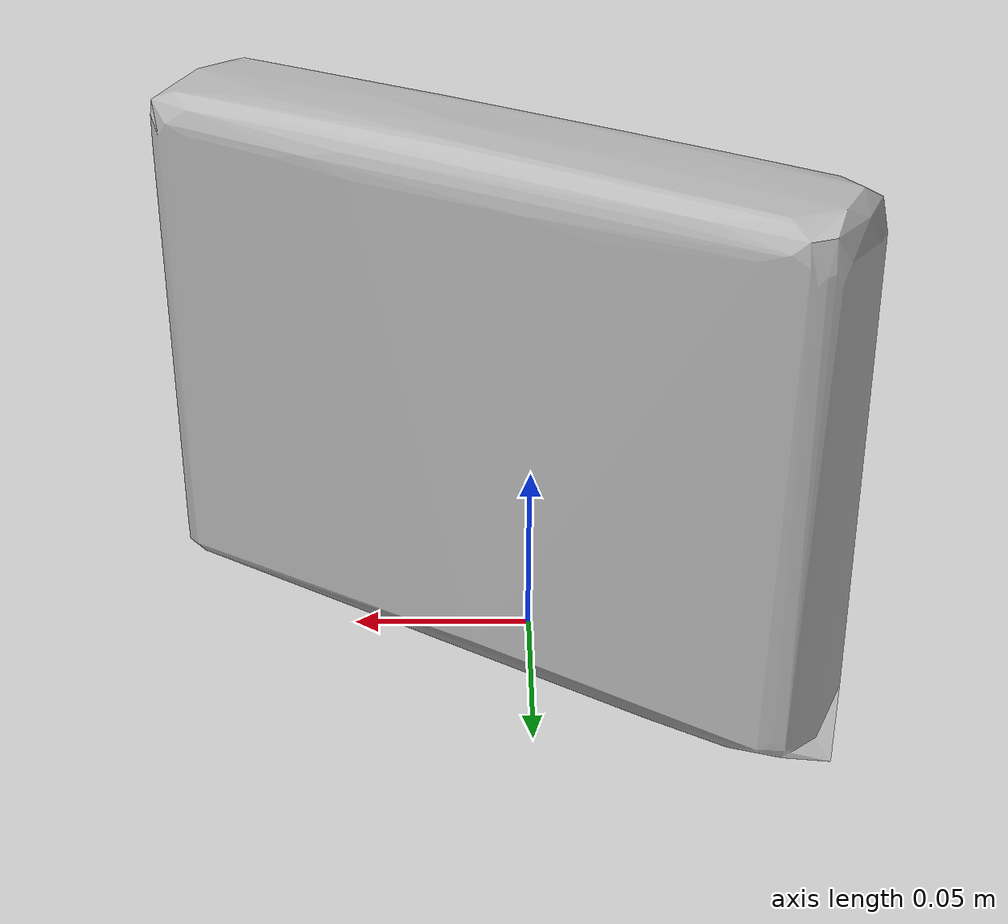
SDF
<?xml version='1.0'?>
<sdf version="1.4">
  <model name="nutrigrain_strawberry">
    <static>false</static>
    <link name="link">
      <inertial>
        <pose>0.01125225173129584 -0.002451320355566048 0.07442924615331162 -1.5897304970021138 -0.008208985964946836 1.0113227570845573</pose>
        <mass>0.13193830496769776</mass>
        <inertia>
          <ixx>0.0006444375303314546</ixx>
          <ixy>-1.4780607443686215e-20</ixy>
          <ixz>-1.0466981082554694e-19</ixz>
          <iyy>0.0004492979896655567</iyy>
          <iyz>-4.888222360835308e-21</iyz>
          <izz>0.0002429828507172094</izz>
        </inertia>
      </inertial>
      <collision name="collision">
        <geometry>
          <mesh>
            <!-- Use a downsampled mesh for collisions -->
            <uri>model:///nutrigrain_strawberry/nutrigrain_strawberry_250_collision.obj</uri>
	        </mesh>
        </geometry>
        <surface>
      </surface>
      </collision>
      <visual name="visual">
        <geometry>
          <mesh>
            <uri>model:///nutrigrain_strawberry/optimized_tsdf_texture_mapped_mesh.obj</uri>
	        </mesh>
        </geometry>
        <material>
          <script>
            <uri>model:///nutrigrain_strawberry/nutrigrain_strawberry.material</uri>
            <name>nutrigrain_strawberry</name>
          </script>
        </material>
      </visual>
    </link>
  </model>
</sdf>
